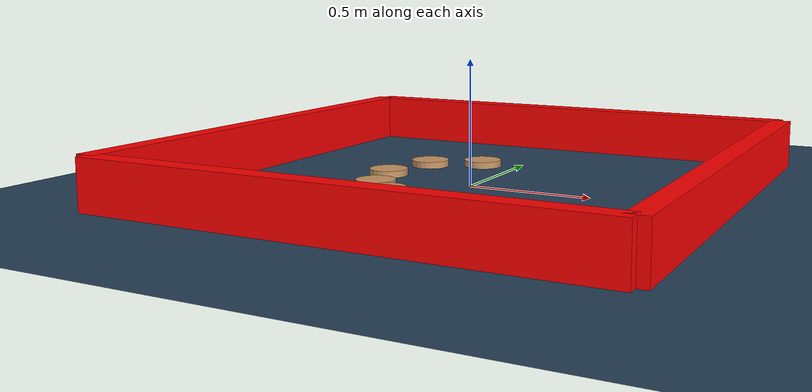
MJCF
<mujoco model="delta_array">
        <visual>
            <headlight diffuse="0.6 0.6 0.6" ambient="0.3 0.3 0.3" specular="0 0 0" />
            <rgba haze="0.15 0.25 0.35 1" />
        </visual>

        <asset>
            <texture type="skybox" builtin="gradient" rgb1="0.3 0.5 0.7" rgb2="0 0 0" width="512"
                height="3072" />
            <texture type="2d" name="groundplane" builtin="checker" mark="edge" rgb1="0.2 0.3 0.4"
                rgb2="0.1 0.2 0.3"
                markrgb="0.8 0.8 0.8" width="300" height="300" />
            <material name="groundplane" texture="groundplane" texuniform="true" texrepeat="5 5"
                reflectance="0.2" />
            <material name="collision_material" rgba="0 0 0 0" /> <!-- transparent for collision -->
            <material name="visual_material" rgba="0 0 1 0.3" /> <!-- Blue semi-transparent for visual -->
        </asset>

        <worldbody>
            <light pos="0 0 1.5" dir="0 0 -1" directional="true" />
            <geom name="floor" size="0 0 0.05" type="plane" material="groundplane" />

            <geom type="box" size="0.04 1 0.1" pos="1 0 0.1" rgba="1 0 0 1"/>
            <geom type="box" size="0.04 1 0.1" pos="-1 0 0.1" rgba="1 0 0 1"/>
            <geom type="box" size="1 0.04 0.1" pos="0 1 0.1" rgba="1 0 0 1"/>
            <geom type="box" size="1 0.04 0.1" pos="0 -1 0.1" rgba="1 0 0 1"/>

<body name="body_0" pos="-0.160923882314989 0.43496832782181893 0">
                <geom type="cylinder" size="0.08 0.025" rgba="0.8 0.6 0.4 1" density="350" friction="0.02 0.005 0.0001"/>
                <joint type="free"/>
            </body>
<body name="body_1" pos="-0.4191646024986775 0.07133415192061276 0">
                <geom type="cylinder" size="0.08 0.025" rgba="0.8 0.6 0.4 1" density="350" friction="0.02 0.005 0.0001"/>
                <joint type="free"/>
            </body>
<body name="body_2" pos="-0.22543841595167424 -0.26384638074034106 0">
                <geom type="cylinder" size="0.08 0.025" rgba="0.8 0.6 0.4 1" density="350" friction="0.02 0.005 0.0001"/>
                <joint type="free"/>
            </body>
<body name="body_3" pos="-0.34072062707007467 -0.15441065600278303 0">
                <geom type="cylinder" size="0.08 0.025" rgba="0.8 0.6 0.4 1" density="350" friction="0.02 0.005 0.0001"/>
                <joint type="free"/>
            </body>
<body name="body_4" pos="-0.36700610463488237 0.3345333168503595 0">
                <geom type="cylinder" size="0.08 0.025" rgba="0.8 0.6 0.4 1" density="350" friction="0.02 0.005 0.0001"/>
                <joint type="free"/>
            </body>

        </worldbody>
    </mujoco>
